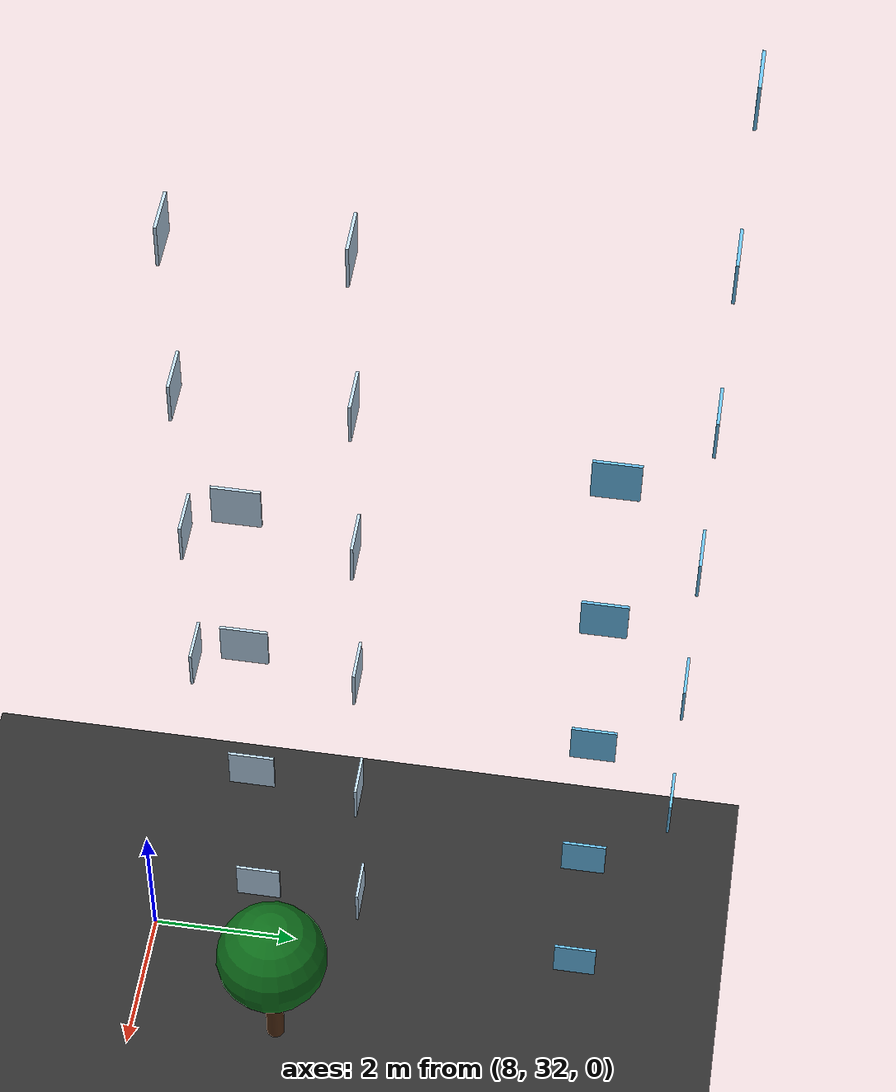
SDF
<sdf version="1.10">
 <world name="city_uav_demo">
  <model name="ground_plane">
   <static>true</static>
   <pose>20.0000 20.0000 -0.0500 0 0 0.0000</pose>
   <link name="link">
    <collision name="collision"><geometry><box><size>40.0000 40.0000 0.1000</size></box></geometry></collision>
    <visual name="visual">
     <geometry><box><size>40.0000 40.0000 0.1000</size></box></geometry>
     <material><ambient>0.18 0.18 0.18 1.0</ambient><diffuse>0.18 0.18 0.18 1.0</diffuse></material>
    </visual>
   </link>
  </model>
  <model name="building_6_window_front_5">
   <static>true</static>
   <pose>8.3750 32.9880 6.8000 0 0 0.0000</pose>
   <link name="link">
    <visual name="visual">
     <geometry><box><size>0.5500 0.0350 0.5500</size></box></geometry>
     <material><ambient>0.75 0.86 0.95 1.0</ambient><diffuse>0.75 0.86 0.95 1.0</diffuse></material>
    </visual>
   </link>
  </model>
  <model name="building_6_window_front_7">
   <static>true</static>
   <pose>8.3750 32.9880 9.2000 0 0 0.0000</pose>
   <link name="link">
    <visual name="visual">
     <geometry><box><size>0.5500 0.0350 0.5500</size></box></geometry>
     <material><ambient>0.75 0.86 0.95 1.0</ambient><diffuse>0.75 0.86 0.95 1.0</diffuse></material>
    </visual>
   </link>
  </model>
  <model name="building_6_window_front_9">
   <static>true</static>
   <pose>8.3750 32.9880 11.6000 0 0 0.0000</pose>
   <link name="link">
    <visual name="visual">
     <geometry><box><size>0.5500 0.0350 0.5500</size></box></geometry>
     <material><ambient>0.75 0.86 0.95 1.0</ambient><diffuse>0.75 0.86 0.95 1.0</diffuse></material>
    </visual>
   </link>
  </model>
  <model name="building_6_window_front_11">
   <static>true</static>
   <pose>8.3750 32.9880 14.0000 0 0 0.0000</pose>
   <link name="link">
    <visual name="visual">
     <geometry><box><size>0.5500 0.0350 0.5500</size></box></geometry>
     <material><ambient>0.75 0.86 0.95 1.0</ambient><diffuse>0.75 0.86 0.95 1.0</diffuse></material>
    </visual>
   </link>
  </model>
  <model name="building_6_window_back_1">
   <static>true</static>
   <pose>8.3750 35.0120 2.0000 0 0 0.0000</pose>
   <link name="link">
    <visual name="visual">
     <geometry><box><size>0.5500 0.0350 0.5500</size></box></geometry>
     <material><ambient>0.75 0.86 0.95 1.0</ambient><diffuse>0.75 0.86 0.95 1.0</diffuse></material>
    </visual>
   </link>
  </model>
  <model name="building_6_window_back_3">
   <static>true</static>
   <pose>8.3750 35.0120 4.4000 0 0 0.0000</pose>
   <link name="link">
    <visual name="visual">
     <geometry><box><size>0.5500 0.0350 0.5500</size></box></geometry>
     <material><ambient>0.75 0.86 0.95 1.0</ambient><diffuse>0.75 0.86 0.95 1.0</diffuse></material>
    </visual>
   </link>
  </model>
  <model name="building_6_window_back_5">
   <static>true</static>
   <pose>8.3750 35.0120 6.8000 0 0 0.0000</pose>
   <link name="link">
    <visual name="visual">
     <geometry><box><size>0.5500 0.0350 0.5500</size></box></geometry>
     <material><ambient>0.75 0.86 0.95 1.0</ambient><diffuse>0.75 0.86 0.95 1.0</diffuse></material>
    </visual>
   </link>
  </model>
  <model name="building_6_window_back_7">
   <static>true</static>
   <pose>8.3750 35.0120 9.2000 0 0 0.0000</pose>
   <link name="link">
    <visual name="visual">
     <geometry><box><size>0.5500 0.0350 0.5500</size></box></geometry>
     <material><ambient>0.75 0.86 0.95 1.0</ambient><diffuse>0.75 0.86 0.95 1.0</diffuse></material>
    </visual>
   </link>
  </model>
  <model name="building_6_window_back_9">
   <static>true</static>
   <pose>8.3750 35.0120 11.6000 0 0 0.0000</pose>
   <link name="link">
    <visual name="visual">
     <geometry><box><size>0.5500 0.0350 0.5500</size></box></geometry>
     <material><ambient>0.75 0.86 0.95 1.0</ambient><diffuse>0.75 0.86 0.95 1.0</diffuse></material>
    </visual>
   </link>
  </model>
  <model name="building_6_window_back_11">
   <static>true</static>
   <pose>8.3750 35.0120 14.0000 0 0 0.0000</pose>
   <link name="link">
    <visual name="visual">
     <geometry><box><size>0.5500 0.0350 0.5500</size></box></geometry>
     <material><ambient>0.75 0.86 0.95 1.0</ambient><diffuse>0.75 0.86 0.95 1.0</diffuse></material>
    </visual>
   </link>
  </model>
  <model name="building_6_window_right_0">
   <static>true</static>
   <pose>10.0120 34.0000 2.0000 0 0 0.0000</pose>
   <link name="link">
    <visual name="visual">
     <geometry><box><size>0.0350 0.5500 0.5500</size></box></geometry>
     <material><ambient>0.75 0.86 0.95 1.0</ambient><diffuse>0.75 0.86 0.95 1.0</diffuse></material>
    </visual>
   </link>
  </model>
  <model name="building_6_window_right_1">
   <static>true</static>
   <pose>10.0120 34.0000 4.4000 0 0 0.0000</pose>
   <link name="link">
    <visual name="visual">
     <geometry><box><size>0.0350 0.5500 0.5500</size></box></geometry>
     <material><ambient>0.75 0.86 0.95 1.0</ambient><diffuse>0.75 0.86 0.95 1.0</diffuse></material>
    </visual>
   </link>
  </model>
  <model name="building_6_window_right_2">
   <static>true</static>
   <pose>10.0120 34.0000 6.8000 0 0 0.0000</pose>
   <link name="link">
    <visual name="visual">
     <geometry><box><size>0.0350 0.5500 0.5500</size></box></geometry>
     <material><ambient>0.75 0.86 0.95 1.0</ambient><diffuse>0.75 0.86 0.95 1.0</diffuse></material>
    </visual>
   </link>
  </model>
  <model name="building_6_window_right_3">
   <static>true</static>
   <pose>10.0120 34.0000 9.2000 0 0 0.0000</pose>
   <link name="link">
    <visual name="visual">
     <geometry><box><size>0.0350 0.5500 0.5500</size></box></geometry>
     <material><ambient>0.75 0.86 0.95 1.0</ambient><diffuse>0.75 0.86 0.95 1.0</diffuse></material>
    </visual>
   </link>
  </model>
  <model name="building_6_window_right_4">
   <static>true</static>
   <pose>10.0120 34.0000 11.6000 0 0 0.0000</pose>
   <link name="link">
    <visual name="visual">
     <geometry><box><size>0.0350 0.5500 0.5500</size></box></geometry>
     <material><ambient>0.75 0.86 0.95 1.0</ambient><diffuse>0.75 0.86 0.95 1.0</diffuse></material>
    </visual>
   </link>
  </model>
  <model name="building_19_window_back_1">
   <static>true</static>
   <pose>8.0000 39.0120 4.4000 0 0 0.0000</pose>
   <link name="link">
    <visual name="visual">
     <geometry><box><size>0.5500 0.0350 0.5500</size></box></geometry>
     <material><ambient>0.42 0.76 0.95 1.0</ambient><diffuse>0.42 0.76 0.95 1.0</diffuse></material>
    </visual>
   </link>
  </model>
  <model name="building_19_window_back_2">
   <static>true</static>
   <pose>8.0000 39.0120 6.8000 0 0 0.0000</pose>
   <link name="link">
    <visual name="visual">
     <geometry><box><size>0.5500 0.0350 0.5500</size></box></geometry>
     <material><ambient>0.42 0.76 0.95 1.0</ambient><diffuse>0.42 0.76 0.95 1.0</diffuse></material>
    </visual>
   </link>
  </model>
  <model name="building_19_window_back_3">
   <static>true</static>
   <pose>8.0000 39.0120 9.2000 0 0 0.0000</pose>
   <link name="link">
    <visual name="visual">
     <geometry><box><size>0.5500 0.0350 0.5500</size></box></geometry>
     <material><ambient>0.42 0.76 0.95 1.0</ambient><diffuse>0.42 0.76 0.95 1.0</diffuse></material>
    </visual>
   </link>
  </model>
  <model name="building_19_window_back_4">
   <static>true</static>
   <pose>8.0000 39.0120 11.6000 0 0 0.0000</pose>
   <link name="link">
    <visual name="visual">
     <geometry><box><size>0.5500 0.0350 0.5500</size></box></geometry>
     <material><ambient>0.42 0.76 0.95 1.0</ambient><diffuse>0.42 0.76 0.95 1.0</diffuse></material>
    </visual>
   </link>
  </model>
  <model name="building_19_window_back_5">
   <static>true</static>
   <pose>8.0000 39.0120 14.0000 0 0 0.0000</pose>
   <link name="link">
    <visual name="visual">
     <geometry><box><size>0.5500 0.0350 0.5500</size></box></geometry>
     <material><ambient>0.42 0.76 0.95 1.0</ambient><diffuse>0.42 0.76 0.95 1.0</diffuse></material>
    </visual>
   </link>
  </model>
  <model name="building_19_window_back_6">
   <static>true</static>
   <pose>8.0000 39.0120 16.4000 0 0 0.0000</pose>
   <link name="link">
    <visual name="visual">
     <geometry><box><size>0.5500 0.0350 0.5500</size></box></geometry>
     <material><ambient>0.42 0.76 0.95 1.0</ambient><diffuse>0.42 0.76 0.95 1.0</diffuse></material>
    </visual>
   </link>
  </model>
  <model name="building_19_window_right_0">
   <static>true</static>
   <pose>9.0120 38.0000 2.0000 0 0 0.0000</pose>
   <link name="link">
    <visual name="visual">
     <geometry><box><size>0.0350 0.5500 0.5500</size></box></geometry>
     <material><ambient>0.42 0.76 0.95 1.0</ambient><diffuse>0.42 0.76 0.95 1.0</diffuse></material>
    </visual>
   </link>
  </model>
  <model name="building_19_window_right_1">
   <static>true</static>
   <pose>9.0120 38.0000 4.4000 0 0 0.0000</pose>
   <link name="link">
    <visual name="visual">
     <geometry><box><size>0.0350 0.5500 0.5500</size></box></geometry>
     <material><ambient>0.42 0.76 0.95 1.0</ambient><diffuse>0.42 0.76 0.95 1.0</diffuse></material>
    </visual>
   </link>
  </model>
  <model name="building_19_window_right_2">
   <static>true</static>
   <pose>9.0120 38.0000 6.8000 0 0 0.0000</pose>
   <link name="link">
    <visual name="visual">
     <geometry><box><size>0.0350 0.5500 0.5500</size></box></geometry>
     <material><ambient>0.42 0.76 0.95 1.0</ambient><diffuse>0.42 0.76 0.95 1.0</diffuse></material>
    </visual>
   </link>
  </model>
  <model name="building_19_window_right_3">
   <static>true</static>
   <pose>9.0120 38.0000 9.2000 0 0 0.0000</pose>
   <link name="link">
    <visual name="visual">
     <geometry><box><size>0.0350 0.5500 0.5500</size></box></geometry>
     <material><ambient>0.42 0.76 0.95 1.0</ambient><diffuse>0.42 0.76 0.95 1.0</diffuse></material>
    </visual>
   </link>
  </model>
  <model name="building_19_window_right_4">
   <static>true</static>
   <pose>9.0120 38.0000 11.6000 0 0 0.0000</pose>
   <link name="link">
    <visual name="visual">
     <geometry><box><size>0.0350 0.5500 0.5500</size></box></geometry>
     <material><ambient>0.42 0.76 0.95 1.0</ambient><diffuse>0.42 0.76 0.95 1.0</diffuse></material>
    </visual>
   </link>
  </model>
  <model name="tree_20_trunk">
   <static>true</static>
   <pose>9.5000 34.0000 0.7500 0.0000 0.0000 0.0000</pose>
   <link name="link">
    <visual name="visual">
     <geometry><cylinder><radius>0.1200</radius><length>1.5000</length></cylinder></geometry>
     <material><ambient>0.32 0.18 0.08 1.0</ambient><diffuse>0.32 0.18 0.08 1.0</diffuse></material>
    </visual>
   </link>
  </model>
  <model name="tree_20_crown">
   <static>true</static>
   <pose>9.5000 34.0000 1.8500 0 0 0</pose>
   <link name="link">
    <visual name="visual">
     <geometry><sphere><radius>0.7500</radius></sphere></geometry>
     <material><ambient>0.05 0.42 0.10 1.0</ambient><diffuse>0.05 0.42 0.10 1.0</diffuse></material>
    </visual>
   </link>
  </model>
 </world>
</sdf>
